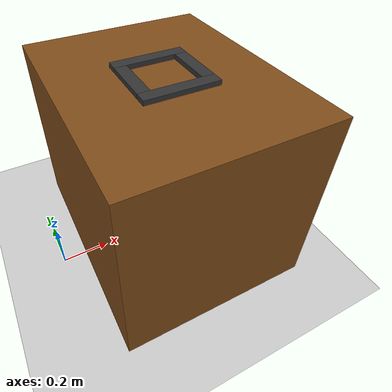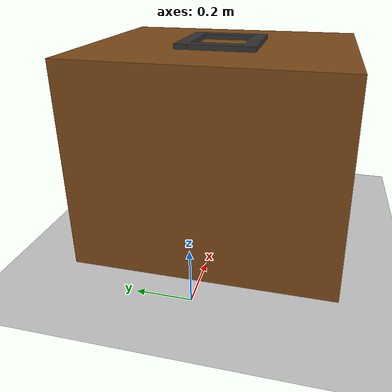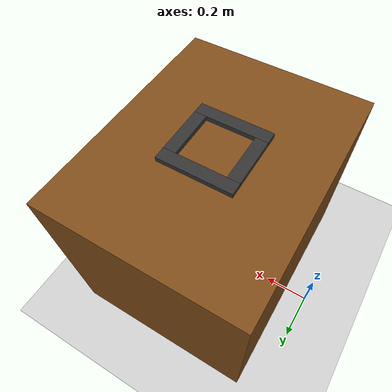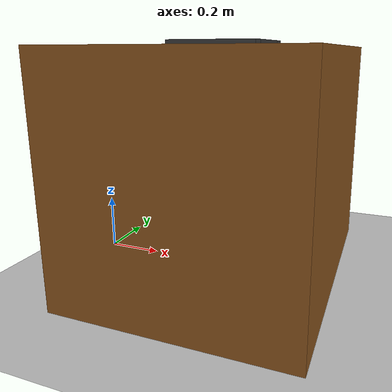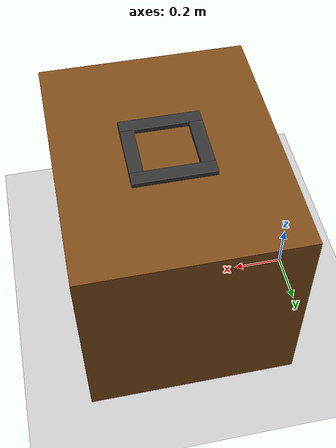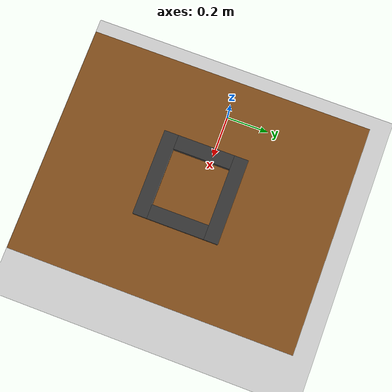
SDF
<?xml version="1.0" ?>
<sdf version="1.6">
  <world name="peg_in_hole_world">
    <include>
      <uri>model://sun</uri>
    </include>
    <include>
      <uri>model://ground_plane</uri>
    </include>

    <model name="workstation">
      <static>true</static> <link name="table_top">
        <pose>0.5 0 0.4 0 0 0</pose> <collision name="table_collision">
          <geometry><box><size>0.8 1.0 0.8</size></box></geometry>
        </collision>
        <visual name="table_visual">
          <geometry><box><size>0.8 1.0 0.8</size></box></geometry>
          <material><ambient>0.5 0.3 0.1 1</ambient></material> </visual>
      </link>

      <link name="plate">
        <pose>0.5 0 0.81 0 0 0</pose>

        <collision name="top_col"><pose>0 0.125 0 0 0 0</pose><geometry><box><size>0.3 0.05 0.02</size></box></geometry></collision>
        <visual name="top_vis"><pose>0 0.125 0 0 0 0</pose><geometry><box><size>0.3 0.05 0.02</size></box></geometry><material><ambient>0.2 0.2 0.2 1</ambient></material></visual>

        <collision name="bottom_col"><pose>0 -0.125 0 0 0 0</pose><geometry><box><size>0.3 0.05 0.02</size></box></geometry></collision>
        <visual name="bottom_vis"><pose>0 -0.125 0 0 0 0</pose><geometry><box><size>0.3 0.05 0.02</size></box></geometry><material><ambient>0.2 0.2 0.2 1</ambient></material></visual>

        <collision name="left_col"><pose>-0.125 0 0 0 0 0</pose><geometry><box><size>0.05 0.2 0.02</size></box></geometry></collision>
        <visual name="left_vis"><pose>-0.125 0 0 0 0 0</pose><geometry><box><size>0.05 0.2 0.02</size></box></geometry><material><ambient>0.2 0.2 0.2 1</ambient></material></visual>

        <collision name="right_col"><pose>0.125 0 0 0 0 0</pose><geometry><box><size>0.05 0.2 0.02</size></box></geometry></collision>
        <visual name="right_vis"><pose>0.125 0 0 0 0 0</pose><geometry><box><size>0.05 0.2 0.02</size></box></geometry><material><ambient>0.2 0.2 0.2 1</ambient></material></visual>
      </link>
    </model>
  </world>
</sdf>
